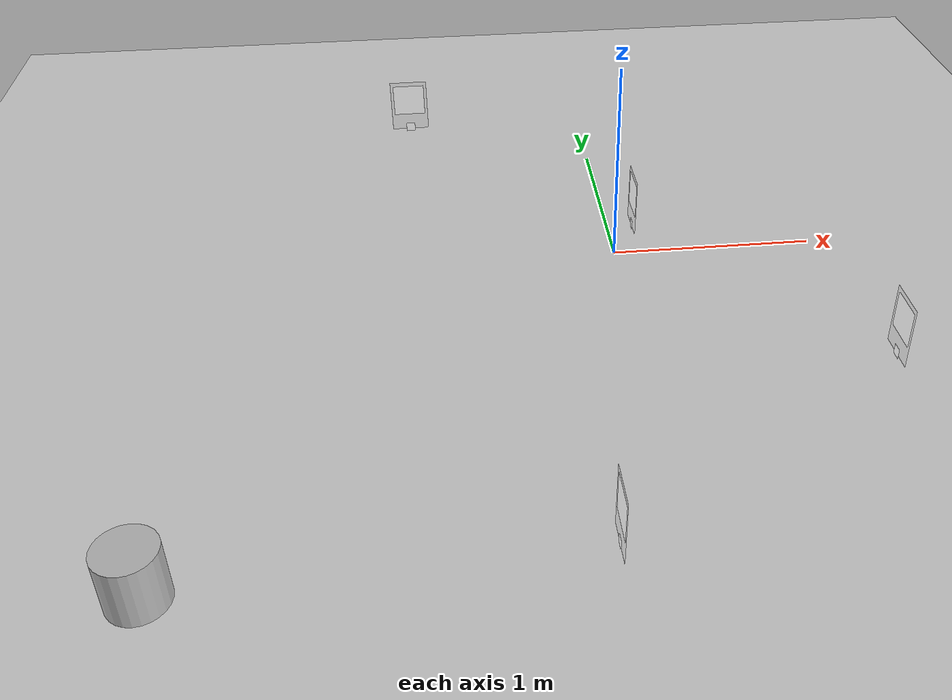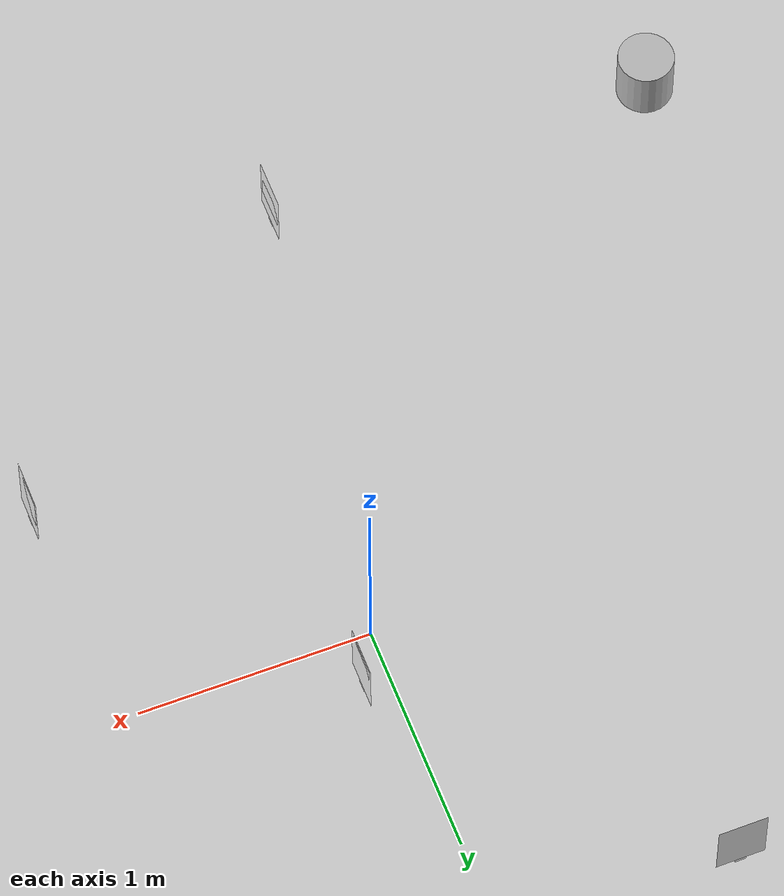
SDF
<sdf version="1.7">
 <world name="default">
  <model name="ground_plane">
   <static>1</static>
   <link name="link">
    <collision name="collision">
     <geometry><plane><normal>0 0 1</normal><size>100 100</size></plane></geometry>
     <surface>
      <contact><collide_bitmask>65535</collide_bitmask></contact>
      <friction><ode><mu>100</mu><mu2>50</mu2></ode></friction>
     </surface>
    </collision>
    <visual name="visual">
     <cast_shadows>0</cast_shadows>
     <geometry><plane><normal>0 0 1</normal><size>100 100</size></plane></geometry>
     <material>
      <script><uri>file://media/materials/scripts/gazebo.material</uri><name>Gazebo/Grey</name></script>
     </material>
    </visual>
   </link>
  </model>
  <model name="obstacle_2">
   <pose>-2 -2 0.124999 0 -0 0</pose>
   <link name="link">
    <collision name="collision">
     <geometry><cylinder><radius>0.12</radius><length>0.25</length></cylinder></geometry>
    </collision>
    <visual name="visual">
     <geometry><cylinder><radius>0.12</radius><length>0.25</length></cylinder></geometry>
    </visual>
    <inertial>
     <inertia><ixx>1</ixx><ixy>0</ixy><ixz>0</ixz><iyy>1</iyy><iyz>0</iyz><izz>1</izz></inertia>
     <mass>1</mass>
    </inertial>
   </link>
   <plugin name="obstacle_2" filename="libobstacle_2.so"/>
  </model>
  <model name="new">
   <model name="aruco_visual_marker_1_pad">
    <frame name="aruco_visual_marker_1::__model__" attached_to="aruco_visual_marker_1::marker">
     <pose relative_to="__model__">0 0 0 0 -0 0</pose>
    </frame>
    <link name="aruco_visual_marker_1::marker">
     <visual name="visual">
      <geometry><box><size>0.1778 0.1778 1e-05</size></box></geometry>
      <material>
       <script>
        <uri>model://aruco_visual_marker_1/materials/scripts</uri>
        <uri>model://aruco_visual_marker_1/materials/textures</uri>
        <name>ArucoVisualMarker1/Marker</name>
       </script>
       <ambient>1 1 1 1</ambient>
       <diffuse>1 1 1 1</diffuse>
       <specular>0 0 0 1</specular>
       <emissive>1 1 1 0</emissive>
       <shader type="vertex"><normal_map>__default__</normal_map></shader>
      </material>
     </visual>
     <collision name="collision"><geometry><box><size>0.1778 0.1778 1e-05</size></box></geometry></collision>
    </link>
    <link name="aruco_visual_marker_1::marker_pad">
     <pose>0 0 -1e-05 0 -0 0</pose>
     <visual name="visual">
      <geometry><box><size>0.1778 0.1778 1e-05</size></box></geometry>
      <material>
       <lighting>1</lighting>
       <script><uri>file://media/materials/scripts/gazebo.material</uri><name>Gazebo/White</name></script>
       <ambient>0.3 0.3 0.3 1</ambient>
       <diffuse>0.7 0.7 0.7 1</diffuse>
       <specular>0.01 0.01 0.01 1</specular>
       <emissive>1 1 1 0</emissive>
       <shader type="vertex"><normal_map>__default__</normal_map></shader>
      </material>
     </visual>
     <collision name="collision"><geometry><box><size>0.1778 0.1778 1e-05</size></box></geometry></collision>
    </link>
    <joint name="aruco_visual_marker_1::marker_JOINT_marker_pad" type="revolute">
     <parent>aruco_visual_marker_1::marker</parent>
     <child>aruco_visual_marker_1::marker_pad</child>
     <axis>
      <xyz>0 0 1</xyz>
      <limit><upper>0</upper><lower>0</lower></limit>
      <dynamics><spring_reference>0</spring_reference><spring_stiffness>0</spring_stiffness></dynamics>
     </axis>
    </joint>
    <static>1</static>
    <link name="marker_pad_large">
     <pose>-0.035 0 -1e-05 0 -0 0</pose>
     <visual name="visual">
      <geometry><box><size>0.297 0.21 1e-05</size></box></geometry>
      <material>
       <lighting>1</lighting>
       <script><uri>file://media/materials/scripts/gazebo.material</uri><name>Gazebo/White</name></script>
       <ambient>0.3 0.3 0.3 1</ambient>
       <diffuse>0.7 0.7 0.7 1</diffuse>
       <specular>0.01 0.01 0.01 1</specular>
       <emissive>1 1 1 0</emissive>
       <shader type="vertex"><normal_map>__default__</normal_map></shader>
      </material>
     </visual>
     <collision name="collision">
      <geometry><box><size>0.297 0.21 1e-05</size></box></geometry>
      <surface>
       <friction>
        <ode><mu>1</mu><mu2>1</mu2><fdir1>0 0 0</fdir1><slip1>0</slip1><slip2>0</slip2></ode>
        <torsional>
         <coefficient>1</coefficient>
         <patch_radius>0</patch_radius>
         <surface_radius>0</surface_radius>
         <use_patch_radius>1</use_patch_radius>
         <ode><slip>0</slip></ode>
        </torsional>
       </friction>
       <bounce><restitution_coefficient>0</restitution_coefficient><threshold>1e+06</threshold></bounce>
       <contact>
        <collide_without_contact>0</collide_without_contact>
        <collide_without_contact_bitmask>1</collide_without_contact_bitmask>
        <collide_bitmask>1</collide_bitmask>
        <ode>
         <soft_cfm>0</soft_cfm>
         <soft_erp>0.2</soft_erp>
         <kp>1e+13</kp>
         <kd>1</kd>
         <max_vel>0.01</max_vel>
         <min_depth>0</min_depth>
        </ode>
        <bullet>
         <split_impulse>1</split_impulse>
         <split_impulse_penetration_threshold>-0.01</split_impulse_penetration_threshold>
         <soft_cfm>0</soft_cfm>
         <soft_erp>0.2</soft_erp>
         <kp>1e+13</kp>
         <kd>1</kd>
        </bullet>
       </contact>
      </surface>
     </collision>
    </link>
    <link name="marker_num">
     <pose>-0.175 0 0 0 -0 0</pose>
     <visual name="visual">
      <geometry><box><size>0.05 0.05 1e-05</size></box></geometry>
      <material>
       <script>
        <uri>model://aruco_visual_marker_1_pad/materials/scripts</uri>
        <uri>model://aruco_visual_marker_1_pad/materials/textures</uri>
        <name>ArucoVisualMarker1/Num</name>
       </script>
       <ambient>1 1 1 1</ambient>
       <diffuse>1 1 1 1</diffuse>
       <specular>0 0 0 1</specular>
       <emissive>1 1 1 0</emissive>
       <shader type="vertex"><normal_map>__default__</normal_map></shader>
      </material>
     </visual>
     <collision name="collision">
      <geometry><box><size>0.05 0.05 1e-05</size></box></geometry>
      <surface>
       <friction>
        <ode><mu>1</mu><mu2>1</mu2><fdir1>0 0 0</fdir1><slip1>0</slip1><slip2>0</slip2></ode>
        <torsional>
         <coefficient>1</coefficient>
         <patch_radius>0</patch_radius>
         <surface_radius>0</surface_radius>
         <use_patch_radius>1</use_patch_radius>
         <ode><slip>0</slip></ode>
        </torsional>
       </friction>
       <bounce><restitution_coefficient>0</restitution_coefficient><threshold>1e+06</threshold></bounce>
       <contact>
        <collide_without_contact>0</collide_without_contact>
        <collide_without_contact_bitmask>1</collide_without_contact_bitmask>
        <collide_bitmask>1</collide_bitmask>
        <ode>
         <soft_cfm>0</soft_cfm>
         <soft_erp>0.2</soft_erp>
         <kp>1e+13</kp>
         <kd>1</kd>
         <max_vel>0.01</max_vel>
         <min_depth>0</min_depth>
        </ode>
        <bullet>
         <split_impulse>1</split_impulse>
         <split_impulse_penetration_threshold>-0.01</split_impulse_penetration_threshold>
         <soft_cfm>0</soft_cfm>
         <soft_erp>0.2</soft_erp>
         <kp>1e+13</kp>
         <kd>1</kd>
        </bullet>
       </contact>
      </surface>
     </collision>
    </link>
    <joint name="marker_JOINT_marker_pad_large" type="revolute">
     <parent>aruco_visual_marker_1::marker</parent>
     <child>marker_pad_large</child>
     <axis>
      <xyz>0 0 1</xyz>
      <limit><upper>0</upper><lower>0</lower></limit>
      <dynamics><spring_reference>0</spring_reference><spring_stiffness>0</spring_stiffness></dynamics>
     </axis>
    </joint>
    <joint name="pad_large_JOINT_marker_num" type="revolute">
     <parent>marker_pad_large</parent>
     <child>marker_num</child>
     <axis>
      <xyz>0 0 1</xyz>
      <limit><upper>0</upper><lower>0</lower></limit>
      <dynamics><spring_reference>0</spring_reference><spring_stiffness>0</spring_stiffness></dynamics>
     </axis>
    </joint>
    <static>1</static>
    <pose>-0.2803 -1.6384 -0.004033 0 -1.56554 0</pose>
   </model>
   <model name="aruco_visual_marker_2_pad">
    <frame name="aruco_visual_marker_2::__model__" attached_to="aruco_visual_marker_2::marker">
     <pose relative_to="__model__">0 0 0 0 -0 0</pose>
    </frame>
    <link name="aruco_visual_marker_2::marker">
     <visual name="visual">
      <geometry><box><size>0.1778 0.1778 1e-05</size></box></geometry>
      <material>
       <script>
        <uri>model://aruco_visual_marker_2/materials/scripts</uri>
        <uri>model://aruco_visual_marker_2/materials/textures</uri>
        <name>ArucoVisualMarker2/Marker</name>
       </script>
       <ambient>1 1 1 1</ambient>
       <diffuse>1 1 1 1</diffuse>
       <specular>0 0 0 1</specular>
       <emissive>1 1 1 0</emissive>
       <shader type="vertex"><normal_map>__default__</normal_map></shader>
      </material>
     </visual>
     <collision name="collision"><geometry><box><size>0.1778 0.1778 1e-05</size></box></geometry></collision>
    </link>
    <link name="aruco_visual_marker_2::marker_pad">
     <pose>0 0 -1e-05 0 -0 0</pose>
     <visual name="visual">
      <geometry><box><size>0.1778 0.1778 1e-05</size></box></geometry>
      <material>
       <lighting>1</lighting>
       <script><uri>file://media/materials/scripts/gazebo.material</uri><name>Gazebo/White</name></script>
       <ambient>0.3 0.3 0.3 1</ambient>
       <diffuse>0.7 0.7 0.7 1</diffuse>
       <specular>0.01 0.01 0.01 1</specular>
       <emissive>1 1 1 0</emissive>
       <shader type="vertex"><normal_map>__default__</normal_map></shader>
      </material>
     </visual>
     <collision name="collision"><geometry><box><size>0.1778 0.1778 1e-05</size></box></geometry></collision>
    </link>
    <joint name="aruco_visual_marker_2::marker_JOINT_marker_pad" type="revolute">
     <parent>aruco_visual_marker_2::marker</parent>
     <child>aruco_visual_marker_2::marker_pad</child>
     <axis>
      <xyz>0 0 1</xyz>
      <limit><upper>0</upper><lower>0</lower></limit>
      <dynamics><spring_reference>0</spring_reference><spring_stiffness>0</spring_stiffness></dynamics>
     </axis>
    </joint>
    <static>1</static>
    <link name="marker_pad_large">
     <pose>-0.035 0 -1e-05 0 -0 0</pose>
     <visual name="visual">
      <geometry><box><size>0.297 0.21 1e-05</size></box></geometry>
      <material>
       <lighting>1</lighting>
       <script><uri>file://media/materials/scripts/gazebo.material</uri><name>Gazebo/White</name></script>
       <ambient>0.3 0.3 0.3 1</ambient>
       <diffuse>0.7 0.7 0.7 1</diffuse>
       <specular>0.01 0.01 0.01 1</specular>
       <emissive>1 1 1 0</emissive>
       <shader type="vertex"><normal_map>__default__</normal_map></shader>
      </material>
     </visual>
     <collision name="collision">
      <geometry><box><size>0.297 0.21 1e-05</size></box></geometry>
      <surface>
       <friction>
        <ode><mu>1</mu><mu2>1</mu2><fdir1>0 0 0</fdir1><slip1>0</slip1><slip2>0</slip2></ode>
        <torsional>
         <coefficient>1</coefficient>
         <patch_radius>0</patch_radius>
         <surface_radius>0</surface_radius>
         <use_patch_radius>1</use_patch_radius>
         <ode><slip>0</slip></ode>
        </torsional>
       </friction>
       <bounce><restitution_coefficient>0</restitution_coefficient><threshold>1e+06</threshold></bounce>
       <contact>
        <collide_without_contact>0</collide_without_contact>
        <collide_without_contact_bitmask>1</collide_without_contact_bitmask>
        <collide_bitmask>1</collide_bitmask>
        <ode>
         <soft_cfm>0</soft_cfm>
         <soft_erp>0.2</soft_erp>
         <kp>1e+13</kp>
         <kd>1</kd>
         <max_vel>0.01</max_vel>
         <min_depth>0</min_depth>
        </ode>
        <bullet>
         <split_impulse>1</split_impulse>
         <split_impulse_penetration_threshold>-0.01</split_impulse_penetration_threshold>
         <soft_cfm>0</soft_cfm>
         <soft_erp>0.2</soft_erp>
         <kp>1e+13</kp>
         <kd>1</kd>
        </bullet>
       </contact>
      </surface>
     </collision>
    </link>
    <link name="marker_num">
     <pose>-0.175 0 0 0 -0 0</pose>
     <visual name="visual">
      <geometry><box><size>0.05 0.05 1e-05</size></box></geometry>
      <material>
       <script>
        <uri>model://aruco_visual_marker_2_pad/materials/scripts</uri>
        <uri>model://aruco_visual_marker_2_pad/materials/textures</uri>
        <name>ArucoVisualMarker2/Num</name>
       </script>
       <ambient>1 1 1 1</ambient>
       <diffuse>1 1 1 1</diffuse>
       <specular>0 0 0 1</specular>
       <emissive>1 1 1 0</emissive>
       <shader type="vertex"><normal_map>__default__</normal_map></shader>
      </material>
     </visual>
     <collision name="collision">
      <geometry><box><size>0.05 0.05 1e-05</size></box></geometry>
      <surface>
       <friction>
        <ode><mu>1</mu><mu2>1</mu2><fdir1>0 0 0</fdir1><slip1>0</slip1><slip2>0</slip2></ode>
        <torsional>
         <coefficient>1</coefficient>
         <patch_radius>0</patch_radius>
         <surface_radius>0</surface_radius>
         <use_patch_radius>1</use_patch_radius>
         <ode><slip>0</slip></ode>
        </torsional>
       </friction>
       <bounce><restitution_coefficient>0</restitution_coefficient><threshold>1e+06</threshold></bounce>
       <contact>
        <collide_without_contact>0</collide_without_contact>
        <collide_without_contact_bitmask>1</collide_without_contact_bitmask>
        <collide_bitmask>1</collide_bitmask>
        <ode>
         <soft_cfm>0</soft_cfm>
         <soft_erp>0.2</soft_erp>
         <kp>1e+13</kp>
         <kd>1</kd>
         <max_vel>0.01</max_vel>
         <min_depth>0</min_depth>
        </ode>
        <bullet>
         <split_impulse>1</split_impulse>
         <split_impulse_penetration_threshold>-0.01</split_impulse_penetration_threshold>
         <soft_cfm>0</soft_cfm>
         <soft_erp>0.2</soft_erp>
         <kp>1e+13</kp>
         <kd>1</kd>
        </bullet>
       </contact>
      </surface>
     </collision>
    </link>
    <joint name="marker_JOINT_marker_pad_large" type="revolute">
     <parent>aruco_visual_marker_2::marker</parent>
     <child>marker_pad_large</child>
     <axis>
      <xyz>0 0 1</xyz>
      <limit><upper>0</upper><lower>0</lower></limit>
      <dynamics><spring_reference>0</spring_reference><spring_stiffness>0</spring_stiffness></dynamics>
     </axis>
    </joint>
    <joint name="pad_large_JOINT_marker_num" type="revolute">
     <parent>marker_pad_large</parent>
     <child>marker_num</child>
     <axis>
      <xyz>0 0 1</xyz>
      <limit><upper>0</upper><lower>0</lower></limit>
      <dynamics><spring_reference>0</spring_reference><spring_stiffness>0</spring_stiffness></dynamics>
     </axis>
    </joint>
    <static>1</static>
    <pose>1.12848 -0.66764 -0.005152 0 -1.56766 0</pose>
   </model>
   <model name="aruco_visual_marker_3_pad">
    <frame name="aruco_visual_marker_3::__model__" attached_to="aruco_visual_marker_3::marker">
     <pose relative_to="__model__">0 0 0 0 -0 0</pose>
    </frame>
    <link name="aruco_visual_marker_3::marker">
     <visual name="visual">
      <geometry><box><size>0.1778 0.1778 1e-05</size></box></geometry>
      <material>
       <script>
        <uri>model://aruco_visual_marker_3/materials/scripts</uri>
        <uri>model://aruco_visual_marker_3/materials/textures</uri>
        <name>ArucoVisualMarker3/Marker</name>
       </script>
       <ambient>1 1 1 1</ambient>
       <diffuse>1 1 1 1</diffuse>
       <specular>0 0 0 1</specular>
       <emissive>1 1 1 0</emissive>
       <shader type="vertex"><normal_map>__default__</normal_map></shader>
      </material>
     </visual>
     <collision name="collision"><geometry><box><size>0.1778 0.1778 1e-05</size></box></geometry></collision>
    </link>
    <link name="aruco_visual_marker_3::marker_pad">
     <pose>0 0 -1e-05 0 -0 0</pose>
     <visual name="visual">
      <geometry><box><size>0.1778 0.1778 1e-05</size></box></geometry>
      <material>
       <lighting>1</lighting>
       <script><uri>file://media/materials/scripts/gazebo.material</uri><name>Gazebo/White</name></script>
       <ambient>0.3 0.3 0.3 1</ambient>
       <diffuse>0.7 0.7 0.7 1</diffuse>
       <specular>0.01 0.01 0.01 1</specular>
       <emissive>1 1 1 0</emissive>
       <shader type="vertex"><normal_map>__default__</normal_map></shader>
      </material>
     </visual>
     <collision name="collision"><geometry><box><size>0.1778 0.1778 1e-05</size></box></geometry></collision>
    </link>
    <joint name="aruco_visual_marker_3::marker_JOINT_marker_pad" type="revolute">
     <parent>aruco_visual_marker_3::marker</parent>
     <child>aruco_visual_marker_3::marker_pad</child>
     <axis>
      <xyz>0 0 1</xyz>
      <limit><upper>0</upper><lower>0</lower></limit>
      <dynamics><spring_reference>0</spring_reference><spring_stiffness>0</spring_stiffness></dynamics>
     </axis>
    </joint>
    <static>1</static>
    <link name="marker_pad_large">
     <pose>-0.035 0 -1e-05 0 -0 0</pose>
     <visual name="visual">
      <geometry><box><size>0.297 0.21 1e-05</size></box></geometry>
      <material>
       <lighting>1</lighting>
       <script><uri>file://media/materials/scripts/gazebo.material</uri><name>Gazebo/White</name></script>
       <ambient>0.3 0.3 0.3 1</ambient>
       <diffuse>0.7 0.7 0.7 1</diffuse>
       <specular>0.01 0.01 0.01 1</specular>
       <emissive>1 1 1 0</emissive>
       <shader type="vertex"><normal_map>__default__</normal_map></shader>
      </material>
     </visual>
     <collision name="collision">
      <geometry><box><size>0.297 0.21 1e-05</size></box></geometry>
      <surface>
       <friction>
        <ode><mu>1</mu><mu2>1</mu2><fdir1>0 0 0</fdir1><slip1>0</slip1><slip2>0</slip2></ode>
        <torsional>
         <coefficient>1</coefficient>
         <patch_radius>0</patch_radius>
         <surface_radius>0</surface_radius>
         <use_patch_radius>1</use_patch_radius>
         <ode><slip>0</slip></ode>
        </torsional>
       </friction>
       <bounce><restitution_coefficient>0</restitution_coefficient><threshold>1e+06</threshold></bounce>
       <contact>
        <collide_without_contact>0</collide_without_contact>
        <collide_without_contact_bitmask>1</collide_without_contact_bitmask>
        <collide_bitmask>1</collide_bitmask>
        <ode>
         <soft_cfm>0</soft_cfm>
         <soft_erp>0.2</soft_erp>
         <kp>1e+13</kp>
         <kd>1</kd>
         <max_vel>0.01</max_vel>
         <min_depth>0</min_depth>
        </ode>
        <bullet>
         <split_impulse>1</split_impulse>
         <split_impulse_penetration_threshold>-0.01</split_impulse_penetration_threshold>
         <soft_cfm>0</soft_cfm>
         <soft_erp>0.2</soft_erp>
         <kp>1e+13</kp>
         <kd>1</kd>
        </bullet>
       </contact>
      </surface>
     </collision>
    </link>
    <link name="marker_num">
     <pose>-0.175 0 0 0 -0 0</pose>
     <visual name="visual">
      <geometry><box><size>0.05 0.05 1e-05</size></box></geometry>
      <material>
       <script>
        <uri>model://aruco_visual_marker_3_pad/materials/scripts</uri>
        <uri>model://aruco_visual_marker_3_pad/materials/textures</uri>
        <name>ArucoVisualMarker3/Num</name>
       </script>
       <ambient>1 1 1 1</ambient>
       <diffuse>1 1 1 1</diffuse>
       <specular>0 0 0 1</specular>
       <emissive>1 1 1 0</emissive>
       <shader type="vertex"><normal_map>__default__</normal_map></shader>
      </material>
     </visual>
     <collision name="collision">
      <geometry><box><size>0.05 0.05 1e-05</size></box></geometry>
      <surface>
       <friction>
        <ode><mu>1</mu><mu2>1</mu2><fdir1>0 0 0</fdir1><slip1>0</slip1><slip2>0</slip2></ode>
        <torsional>
         <coefficient>1</coefficient>
         <patch_radius>0</patch_radius>
         <surface_radius>0</surface_radius>
         <use_patch_radius>1</use_patch_radius>
         <ode><slip>0</slip></ode>
        </torsional>
       </friction>
       <bounce><restitution_coefficient>0</restitution_coefficient><threshold>1e+06</threshold></bounce>
       <contact>
        <collide_without_contact>0</collide_without_contact>
        <collide_without_contact_bitmask>1</collide_without_contact_bitmask>
        <collide_bitmask>1</collide_bitmask>
        <ode>
         <soft_cfm>0</soft_cfm>
         <soft_erp>0.2</soft_erp>
         <kp>1e+13</kp>
         <kd>1</kd>
         <max_vel>0.01</max_vel>
         <min_depth>0</min_depth>
        </ode>
        <bullet>
         <split_impulse>1</split_impulse>
         <split_impulse_penetration_threshold>-0.01</split_impulse_penetration_threshold>
         <soft_cfm>0</soft_cfm>
         <soft_erp>0.2</soft_erp>
         <kp>1e+13</kp>
         <kd>1</kd>
        </bullet>
       </contact>
      </surface>
     </collision>
    </link>
    <joint name="marker_JOINT_marker_pad_large" type="revolute">
     <parent>aruco_visual_marker_3::marker</parent>
     <child>marker_pad_large</child>
     <axis>
      <xyz>0 0 1</xyz>
      <limit><upper>0</upper><lower>0</lower></limit>
      <dynamics><spring_reference>0</spring_reference><spring_stiffness>0</spring_stiffness></dynamics>
     </axis>
    </joint>
    <joint name="pad_large_JOINT_marker_num" type="revolute">
     <parent>marker_pad_large</parent>
     <child>marker_num</child>
     <axis>
      <xyz>0 0 1</xyz>
      <limit><upper>0</upper><lower>0</lower></limit>
      <dynamics><spring_reference>0</spring_reference><spring_stiffness>0</spring_stiffness></dynamics>
     </axis>
    </joint>
    <static>1</static>
    <pose>0.139867 0.524246 0.006263 0 -1.56251 0</pose>
   </model>
   <model name="aruco_visual_marker_4_pad">
    <frame name="aruco_visual_marker_4::__model__" attached_to="aruco_visual_marker_4::marker">
     <pose relative_to="__model__">0 0 0 0 -0 0</pose>
    </frame>
    <link name="aruco_visual_marker_4::marker">
     <visual name="visual">
      <geometry><box><size>0.1778 0.1778 1e-05</size></box></geometry>
      <material>
       <script>
        <uri>model://aruco_visual_marker_4/materials/scripts</uri>
        <uri>model://aruco_visual_marker_4/materials/textures</uri>
        <name>ArucoVisualMarker4/Marker</name>
       </script>
       <ambient>1 1 1 1</ambient>
       <diffuse>1 1 1 1</diffuse>
       <specular>0 0 0 1</specular>
       <emissive>1 1 1 0</emissive>
       <shader type="vertex"><normal_map>__default__</normal_map></shader>
      </material>
     </visual>
     <collision name="collision"><geometry><box><size>0.1778 0.1778 1e-05</size></box></geometry></collision>
    </link>
    <link name="aruco_visual_marker_4::marker_pad">
     <pose>0 0 -1e-05 0 -0 0</pose>
     <visual name="visual">
      <geometry><box><size>0.1778 0.1778 1e-05</size></box></geometry>
      <material>
       <lighting>1</lighting>
       <script><uri>file://media/materials/scripts/gazebo.material</uri><name>Gazebo/White</name></script>
       <ambient>0.3 0.3 0.3 1</ambient>
       <diffuse>0.7 0.7 0.7 1</diffuse>
       <specular>0.01 0.01 0.01 1</specular>
       <emissive>1 1 1 0</emissive>
       <shader type="vertex"><normal_map>__default__</normal_map></shader>
      </material>
     </visual>
     <collision name="collision"><geometry><box><size>0.1778 0.1778 1e-05</size></box></geometry></collision>
    </link>
    <joint name="aruco_visual_marker_4::marker_JOINT_marker_pad" type="revolute">
     <parent>aruco_visual_marker_4::marker</parent>
     <child>aruco_visual_marker_4::marker_pad</child>
     <axis>
      <xyz>0 0 1</xyz>
      <limit><upper>0</upper><lower>0</lower></limit>
      <dynamics><spring_reference>0</spring_reference><spring_stiffness>0</spring_stiffness></dynamics>
     </axis>
    </joint>
    <static>1</static>
    <link name="marker_pad_large">
     <pose>-0.035 0 -1e-05 0 -0 0</pose>
     <visual name="visual">
      <geometry><box><size>0.297 0.21 1e-05</size></box></geometry>
      <material>
       <lighting>1</lighting>
       <script><uri>file://media/materials/scripts/gazebo.material</uri><name>Gazebo/White</name></script>
       <ambient>0.3 0.3 0.3 1</ambient>
       <diffuse>0.7 0.7 0.7 1</diffuse>
       <specular>0.01 0.01 0.01 1</specular>
       <emissive>1 1 1 0</emissive>
       <shader type="vertex"><normal_map>__default__</normal_map></shader>
      </material>
     </visual>
     <collision name="collision">
      <geometry><box><size>0.297 0.21 1e-05</size></box></geometry>
      <surface>
       <friction>
        <ode><mu>1</mu><mu2>1</mu2><fdir1>0 0 0</fdir1><slip1>0</slip1><slip2>0</slip2></ode>
        <torsional>
         <coefficient>1</coefficient>
         <patch_radius>0</patch_radius>
         <surface_radius>0</surface_radius>
         <use_patch_radius>1</use_patch_radius>
         <ode><slip>0</slip></ode>
        </torsional>
       </friction>
       <bounce><restitution_coefficient>0</restitution_coefficient><threshold>1e+06</threshold></bounce>
       <contact>
        <collide_without_contact>0</collide_without_contact>
        <collide_without_contact_bitmask>1</collide_without_contact_bitmask>
        <collide_bitmask>1</collide_bitmask>
        <ode>
         <soft_cfm>0</soft_cfm>
         <soft_erp>0.2</soft_erp>
         <kp>1e+13</kp>
         <kd>1</kd>
         <max_vel>0.01</max_vel>
         <min_depth>0</min_depth>
        </ode>
        <bullet>
         <split_impulse>1</split_impulse>
         <split_impulse_penetration_threshold>-0.01</split_impulse_penetration_threshold>
         <soft_cfm>0</soft_cfm>
         <soft_erp>0.2</soft_erp>
         <kp>1e+13</kp>
         <kd>1</kd>
        </bullet>
       </contact>
      </surface>
     </collision>
    </link>
    <link name="marker_num">
     <pose>-0.175 0 0 0 -0 0</pose>
     <visual name="visual">
      <geometry><box><size>0.05 0.05 1e-05</size></box></geometry>
      <material>
       <script>
        <uri>model://aruco_visual_marker_4_pad/materials/scripts</uri>
        <uri>model://aruco_visual_marker_4_pad/materials/textures</uri>
        <name>ArucoVisualMarker4/Num</name>
       </script>
       <ambient>1 1 1 1</ambient>
       <diffuse>1 1 1 1</diffuse>
       <specular>0 0 0 1</specular>
       <emissive>1 1 1 0</emissive>
       <shader type="vertex"><normal_map>__default__</normal_map></shader>
      </material>
     </visual>
     <collision name="collision">
      <geometry><box><size>0.05 0.05 1e-05</size></box></geometry>
      <surface>
       <friction>
        <ode><mu>1</mu><mu2>1</mu2><fdir1>0 0 0</fdir1><slip1>0</slip1><slip2>0</slip2></ode>
        <torsional>
         <coefficient>1</coefficient>
         <patch_radius>0</patch_radius>
         <surface_radius>0</surface_radius>
         <use_patch_radius>1</use_patch_radius>
         <ode><slip>0</slip></ode>
        </torsional>
       </friction>
       <bounce><restitution_coefficient>0</restitution_coefficient><threshold>1e+06</threshold></bounce>
       <contact>
        <collide_without_contact>0</collide_without_contact>
        <collide_without_contact_bitmask>1</collide_without_contact_bitmask>
        <collide_bitmask>1</collide_bitmask>
        <ode>
         <soft_cfm>0</soft_cfm>
         <soft_erp>0.2</soft_erp>
         <kp>1e+13</kp>
         <kd>1</kd>
         <max_vel>0.01</max_vel>
         <min_depth>0</min_depth>
        </ode>
        <bullet>
         <split_impulse>1</split_impulse>
         <split_impulse_penetration_threshold>-0.01</split_impulse_penetration_threshold>
         <soft_cfm>0</soft_cfm>
         <soft_erp>0.2</soft_erp>
         <kp>1e+13</kp>
         <kd>1</kd>
        </bullet>
       </contact>
      </surface>
     </collision>
    </link>
    <joint name="marker_JOINT_marker_pad_large" type="revolute">
     <parent>aruco_visual_marker_4::marker</parent>
     <child>marker_pad_large</child>
     <axis>
      <xyz>0 0 1</xyz>
      <limit><upper>0</upper><lower>0</lower></limit>
      <dynamics><spring_reference>0</spring_reference><spring_stiffness>0</spring_stiffness></dynamics>
     </axis>
    </joint>
    <joint name="pad_large_JOINT_marker_num" type="revolute">
     <parent>marker_pad_large</parent>
     <child>marker_num</child>
     <axis>
      <xyz>0 0 1</xyz>
      <limit><upper>0</upper><lower>0</lower></limit>
      <dynamics><spring_reference>0</spring_reference><spring_stiffness>0</spring_stiffness></dynamics>
     </axis>
    </joint>
    <static>1</static>
    <pose>-0.988034 1.7818 0.002921 -3.09828 -1.56974 -1.60697</pose>
   </model>
   <static>0</static>
   <pose>-0.018162 -0.312677 0.207067 0 -0 0</pose>
  </model>
 </world>
</sdf>
